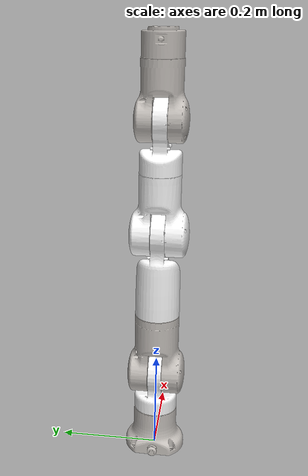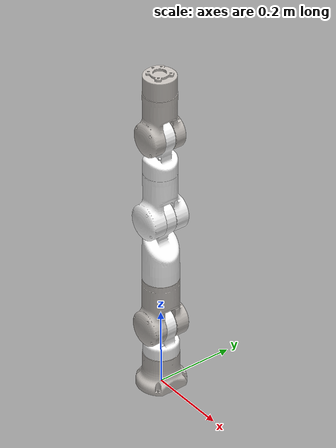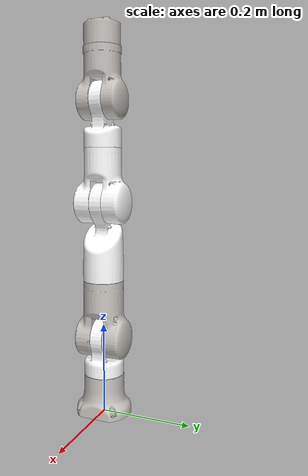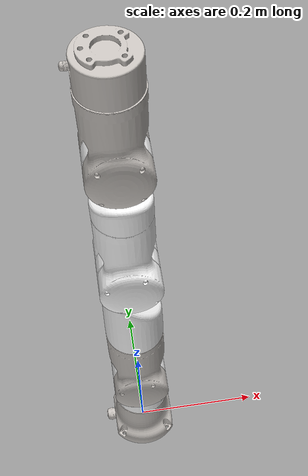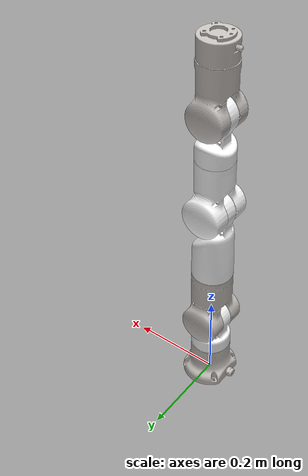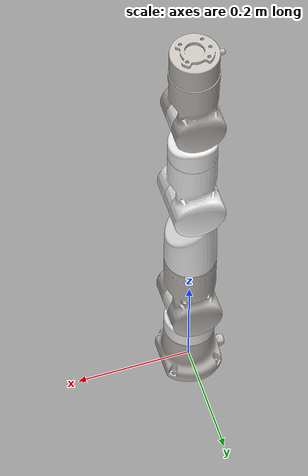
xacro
<?xml version="1.0" encoding="UTF-8"?>
<robot name="TC7_robot" xmlns:xacro="http://wiki.ros.org/xacro" >

  <xacro:include filename="$(find single_arm_description)/urdf/TC7.urdf.xacro"/>

  <xacro:arg name="sim_gazebo_classic" default="false" />
  <xacro:arg name="device_mode" default="8" />
  <xacro:arg name="sim_flag" default="false" />
  <xacro:arg name="system_arg" default="--path /home/robot/Work/system/robot_config --iscopy true" />

  <xacro:include filename="$(find single_arm_description)/urdf/TC7_ros2_control.xacro"/>
  <xacro:TC7_ros2_control_config
    sim_gazebo_classic="$(arg sim_gazebo_classic)"
    device_mode="$(arg device_mode)"
    sim_flag="$(arg sim_flag)"
    system_arg="$(arg system_arg)"
  />

</robot>

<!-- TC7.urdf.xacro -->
<robot name="TC7_robot" xmlns:xacro="http://ros.org/wiki/xacro">
  <xacro:property name = "pkg_address" value = "file://$(find single_arm_description)"/>
  <link
    name="base_link">
    <inertial>
      <origin
        xyz="-0.000315277866048406 -1.67385384906489E-05 0.0388046065972886"
        rpy="0 0 0" />
      <mass
        value="4.47551773999532" />
      <inertia
        ixx="0.00489475193564338"
        ixy="7.48351174655505E-07"
        ixz="-2.4043661148052E-05"
        iyy="0.00479311176489403"
        iyz="-1.93183267913151E-06"
        izz="0.00561341681186308" />
    </inertial>
    <visual>
      <origin
        xyz="0 0 0"
        rpy="0 0 0" />
      <geometry>
        <mesh
          filename="${pkg_address}/meshes/base_link.STL" />
      </geometry>
      <material
        name="">
        <color
          rgba="0.776470588235294 0.756862745098039 0.737254901960784 1" />
      </material>
    </visual>
    <collision>
      <origin
        xyz="0 0 0"
        rpy="0 0 0" />
      <geometry>
        <mesh
          filename="${pkg_address}/meshes/base_link.STL" />
      </geometry>
    </collision>
  </link>
  <link
    name="link1">
    <inertial>
      <origin
        xyz="-3.21247839121386E-06 0.000524472154165993 -0.0441242557731662"
        rpy="0 0 0" />
      <mass
        value="3.29940267206054" />
      <inertia
        ixx="0.00538938444718893"
        ixy="-3.40947999122686E-09"
        ixz="-4.5452552074473E-07"
        iyy="0.00597535993958501"
        iyz="-7.64162242687695E-05"
        izz="0.00258712975386525" />
    </inertial>
    <visual>
      <origin
        xyz="0 0 0"
        rpy="0 0 0" />
      <geometry>
        <mesh
          filename="${pkg_address}/meshes/link1.STL" />
      </geometry>
      <material
        name="">
        <color
          rgba="1 1 1 1" />
      </material>
    </visual>
    <collision>
      <origin
        xyz="0 0 0"
        rpy="0 0 0" />
      <geometry>
        <mesh
          filename="${pkg_address}/meshes/link1.STL" />
      </geometry>
    </collision>
  </link>
  <joint
    name="joint1"
    type="revolute">
    <origin
      xyz="0 0 0.172"
      rpy="0 0 0" />
    <parent
      link="base_link" />
    <child
      link="link1" />
    <axis
      xyz="0 0 1" />
    <limit
      lower="-3.05"
      upper="3.05"
      effort="0"
      velocity="0" />
  </joint>
  <link
    name="link2">
    <inertial>
      <origin
        xyz="-1.21010755637741E-06 -0.0553985266461228 -0.00166564537175994"
        rpy="0 0 0" />
      <mass
        value="5.63523259080329" />
      <inertia
        ixx="0.0152384536407368"
        ixy="-1.14872281409492E-06"
        ixz="-2.68478151460676E-08"
        iyy="0.00674678422393339"
        iyz="0.000400962988158017"
        izz="0.0142810956701959" />
    </inertial>
    <visual>
      <origin
        xyz="0 0 0"
        rpy="0 0 0" />
      <geometry>
        <mesh
          filename="${pkg_address}/meshes/link2.STL" />
      </geometry>
      <material
        name="">
        <color
          rgba="0.776470588235294 0.756862745098039 0.737254901960784 1" />
      </material>
    </visual>
    <collision>
      <origin
        xyz="0 0 0"
        rpy="0 0 0" />
      <geometry>
        <mesh
          filename="${pkg_address}/meshes/link2.STL" />
      </geometry>
    </collision>
  </link>
  <joint
    name="joint2"
    type="revolute">
    <origin
      xyz="0 0 0"
      rpy="-1.5708 0 0" />
    <parent
      link="link1" />
    <child
      link="link2" />
    <axis
      xyz="0 0 1" />
    <limit
      lower="-1.70"
      upper="1.70"
      effort="0"
      velocity="0" />
  </joint>
  <link
    name="link3">
    <inertial>
      <origin
        xyz="-0.00236928911888352 0.000256017152092045 -0.0989215512578255"
        rpy="0 0 0" />
      <mass
        value="6.76099941307629" />
      <inertia
        ixx="0.0241007935216869"
        ixy="-4.07055219685527E-06"
        ixz="0.000524294415049934"
        iyy="0.0245027073583882"
        iyz="-0.000170307131222859"
        izz="0.00577176312688717" />
    </inertial>
    <visual>
      <origin
        xyz="0 0 0"
        rpy="0 0 0" />
      <geometry>
        <mesh
          filename="${pkg_address}/meshes/link3.STL" />
      </geometry>
      <material
        name="">
        <color
          rgba="1 1 1 1" />
      </material>
    </visual>
    <collision>
      <origin
        xyz="0 0 0"
        rpy="0 0 0" />
      <geometry>
        <mesh
          filename="${pkg_address}/meshes/link3.STL" />
      </geometry>
    </collision>
  </link>
  <joint
    name="joint3"
    type="revolute">
    <origin
      xyz="0 -0.3 0"
      rpy="1.5708 0 0" />
    <parent
      link="link2" />
    <child
      link="link3" />
    <axis
      xyz="0 0 1" />
    <limit
      lower="-3.05"
      upper="3.05"
      effort="0"
      velocity="0" />
  </joint>
  <link
    name="link4">
    <inertial>
      <origin
        xyz="1.55190929266324E-06 -0.0327095877778344 -0.00028199151974653"
        rpy="0 0 0" />
      <mass
        value="6.86474514228086" />
      <inertia
        ixx="0.0198391977181838"
        ixy="-2.77145727309977E-07"
        ixz="-1.56651322010881E-08"
        iyy="0.00950734311649449"
        iyz="5.51816010346309E-05"
        izz="0.0163570918762555" />
    </inertial>
    <visual>
      <origin
        xyz="0 0 0"
        rpy="0 0 0" />
      <geometry>
        <mesh
          filename="${pkg_address}/meshes/link4.STL" />
      </geometry>
      <material
        name="">
        <color
          rgba="1 1 1 1" />
      </material>
    </visual>
    <collision>
      <origin
        xyz="0 0 0"
        rpy="0 0 0" />
      <geometry>
        <mesh
          filename="${pkg_address}/meshes/link4.STL" />
      </geometry>
    </collision>
  </link>
  <joint
    name="joint4"
    type="revolute">
    <origin
      xyz="0 0 0"
      rpy="-1.5708 0 0" />
    <parent
      link="link3" />
    <child
      link="link4" />
    <axis
      xyz="0 0 1" />
    <limit
      lower="-1.80"
      upper="2.09"
      effort="0"
      velocity="0" />
  </joint>
  <link
    name="link5">
    <inertial>
      <origin
        xyz="2.61938748366138E-06 0.000664248517394814 -0.0552339020135107"
        rpy="0 0 0" />
      <mass
        value="3.13715935453957" />
      <inertia
        ixx="0.00617168729257725"
        ixy="9.57724016426538E-08"
        ixz="-4.53982824437306E-07"
        iyy="0.00650310856972719"
        iyz="-0.000114073990109814"
        izz="0.00207599235033763" />
    </inertial>
    <visual>
      <origin
        xyz="0 0 0"
        rpy="0 0 0" />
      <geometry>
        <mesh
          filename="${pkg_address}/meshes/link5.STL" />
      </geometry>
      <material
        name="">
        <color
          rgba="1 1 1 1" />
      </material>
    </visual>
    <collision>
      <origin
        xyz="0 0 0"
        rpy="0 0 0" />
      <geometry>
        <mesh
          filename="${pkg_address}/meshes/link5.STL" />
      </geometry>
    </collision>
  </link>
  <joint
    name="joint5"
    type="revolute">
    <origin
      xyz="0 -0.22 0"
      rpy="1.5708 0 0" />
    <parent
      link="link4" />
    <child
      link="link5" />
    <axis
      xyz="0 0 1" />
    <limit
      lower="-3.05"
      upper="3.05"
      effort="0"
      velocity="0" />
  </joint>
  <link
    name="link6">
    <inertial>
      <origin
        xyz="1.46922276359989E-06 -0.0320401134442206 -0.000354045768286587"
        rpy="0 0 0" />
      <mass
        value="5.41190432381928" />
      <inertia
        ixx="0.0130568238032191"
        ixy="-2.448955727349E-07"
        ixz="1.52953724918645E-07"
        iyy="0.00624175373758092"
        iyz="5.44179711475172E-05"
        izz="0.011097047374701" />
    </inertial>
    <visual>
      <origin
        xyz="0 0 0"
        rpy="0 0 0" />
      <geometry>
        <mesh
          filename="${pkg_address}/meshes/link6.STL" />
      </geometry>
      <material
        name="">
        <color
          rgba="0.776470588235294 0.756862745098039 0.737254901960784 1" />
      </material>
    </visual>
    <collision>
      <origin
        xyz="0 0 0"
        rpy="0 0 0" />
      <geometry>
        <mesh
          filename="${pkg_address}/meshes/link6.STL" />
      </geometry>
    </collision>
  </link>
  <joint
    name="joint6"
    type="revolute">
    <origin
      xyz="0 0 0"
      rpy="-1.5708 0 0" />
    <parent
      link="link5" />
    <child
      link="link6" />
    <axis
      xyz="0 0 1" />
    <limit
      lower="-2.00"
      upper="2.00"
      effort="0"
      velocity="0" />
  </joint>
  <link
    name="link7">
    <inertial>
      <origin
        xyz="-0.000201227208658016 4.45950987863571E-06 -0.0324015634635619"
        rpy="0 0 0" />
      <mass
        value="2.17471093562456" />
      <inertia
        ixx="0.00140827770383968"
        ixy="-4.53525877261368E-09"
        ixz="1.01773030744808E-05"
        iyy="0.0014225722678424"
        iyz="2.45339324802836E-07"
        izz="0.00166147868684454" />
    </inertial>
    <visual>
      <origin
        xyz="0 0 0"
        rpy="0 0 0" />
      <geometry>
        <mesh
          filename="${pkg_address}/meshes/link7.STL" />
      </geometry>
      <material
        name="">
        <color
          rgba="0.776470588235294 0.756862745098039 0.737254901960784 1" />
      </material>
    </visual>
    <collision>
      <origin
        xyz="0 0 0"
        rpy="0 0 0" />
      <geometry>
        <mesh
          filename="${pkg_address}/meshes/link7.STL" />
      </geometry>
    </collision>
  </link>
  <joint
    name="joint7"
    type="revolute">
    <origin
      xyz="0 -0.164 0"
      rpy="1.5708 0 0" />
    <parent
      link="link6" />
    <child
      link="link7" />
    <axis
      xyz="0 0 1" />
    <limit
      lower="-3.05"
      upper="3.05"
      effort="0"
      velocity="0" />
  </joint>
</robot>
